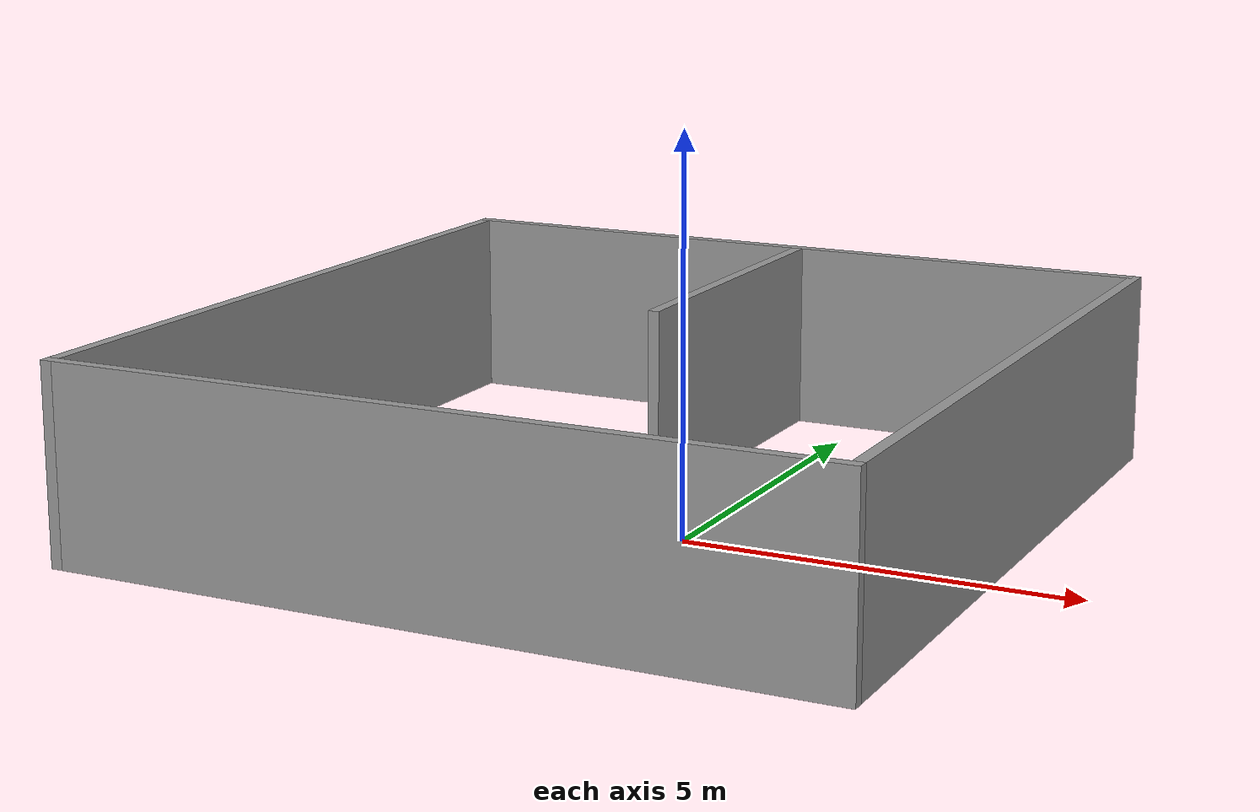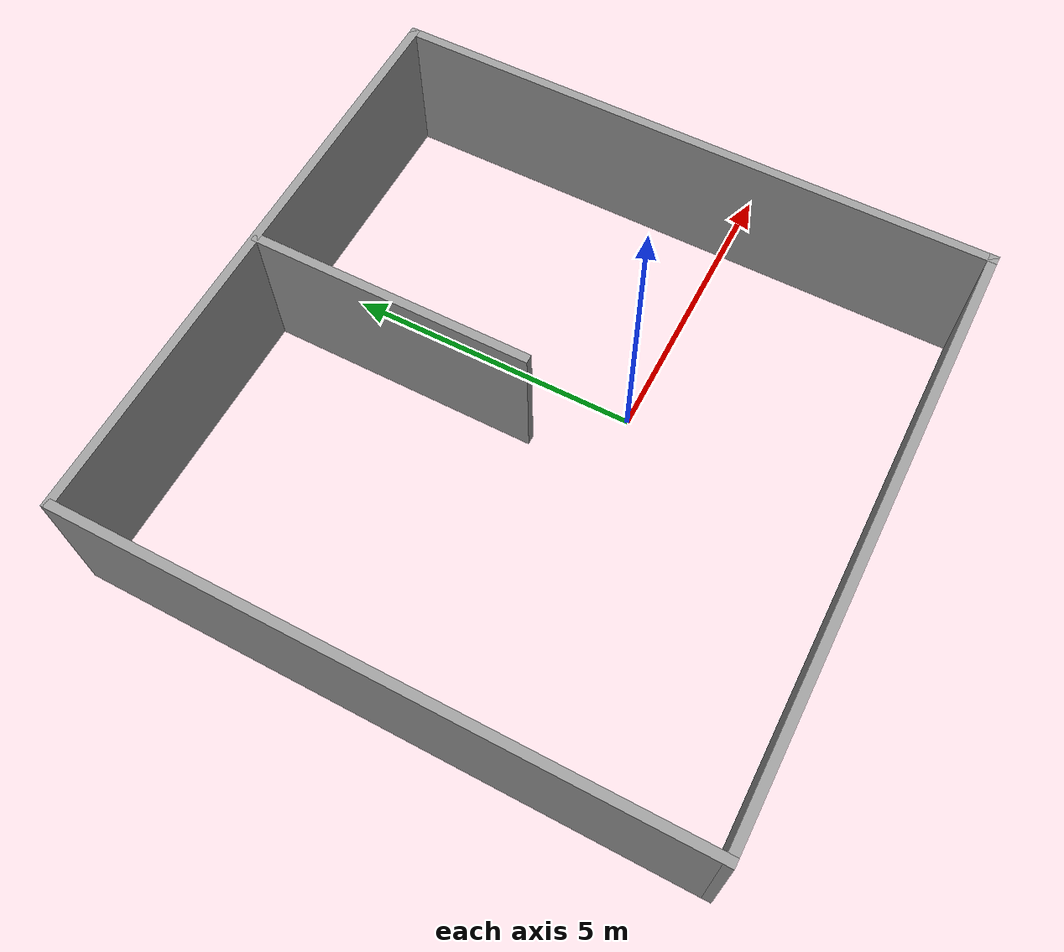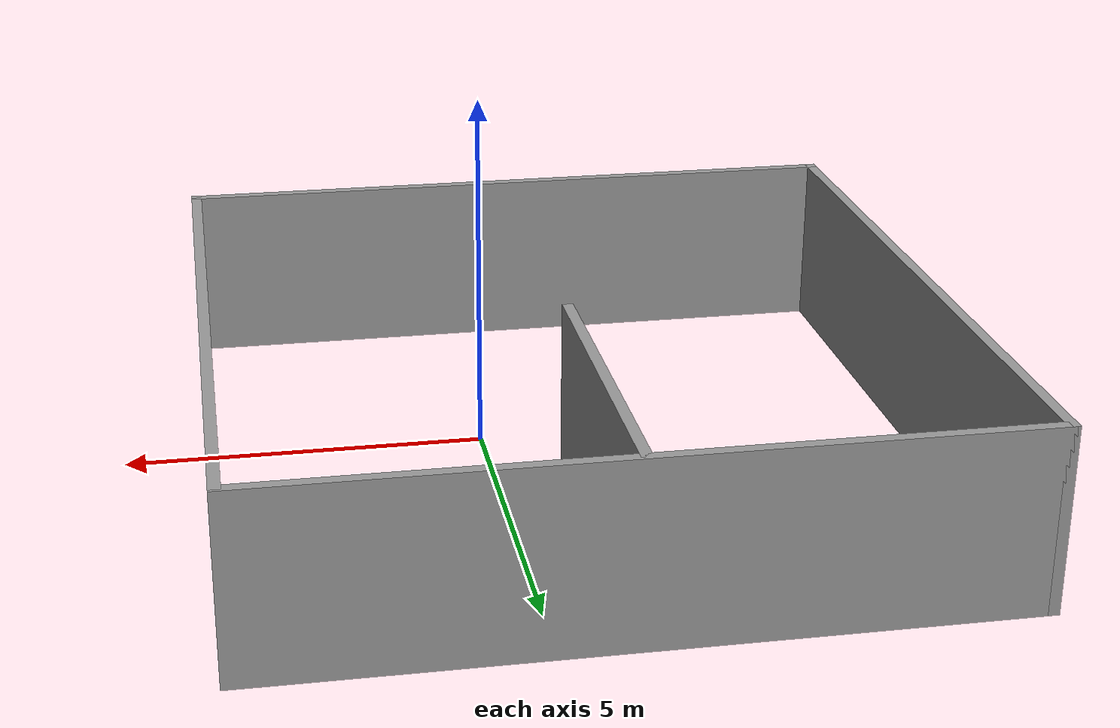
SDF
<?xml version='1.0'?>
<sdf version='1.7'>
  <model name='world3'>
    <pose>-1.12961 0.909542 0 0 -0 0</pose>
    <link name='Wall_19'>
      <collision name='Wall_19_Collision'>
        <geometry>
          <box>
            <size>10 0.15 2.5</size>
          </box>
        </geometry>
        <pose>0 0 1.25 0 -0 0</pose>
      </collision>
      <visual name='Wall_19_Visual'>
        <pose>0 0 1.25 0 -0 0</pose>
        <geometry>
          <box>
            <size>10 0.15 2.5</size>
          </box>
        </geometry>
        <material>
          <script>
            <uri>file://media/materials/scripts/gazebo.material</uri>
            <name>Gazebo/Grey</name>
          </script>
          <ambient>1 1 1 1</ambient>
        </material>
        <meta>
          <layer>0</layer>
        </meta>
      </visual>
      <pose>0 5.05 0 0 -0 0</pose>
    </link>
    <link name='Wall_20'>
      <collision name='Wall_20_Collision'>
        <geometry>
          <box>
            <size>10.25 0.15 2.5</size>
          </box>
        </geometry>
        <pose>0 0 1.25 0 -0 0</pose>
      </collision>
      <visual name='Wall_20_Visual'>
        <pose>0 0 1.25 0 -0 0</pose>
        <geometry>
          <box>
            <size>10.25 0.15 2.5</size>
          </box>
        </geometry>
        <material>
          <script>
            <uri>file://media/materials/scripts/gazebo.material</uri>
            <name>Gazebo/Grey</name>
          </script>
          <ambient>1 1 1 1</ambient>
        </material>
        <meta>
          <layer>0</layer>
        </meta>
      </visual>
      <pose>4.925 0 0 0 -0 -1.5708</pose>
    </link>
    <link name='Wall_21'>
      <collision name='Wall_21_Collision'>
        <geometry>
          <box>
            <size>10 0.15 2.5</size>
          </box>
        </geometry>
        <pose>0 0 1.25 0 -0 0</pose>
      </collision>
      <visual name='Wall_21_Visual'>
        <pose>0 0 1.25 0 -0 0</pose>
        <geometry>
          <box>
            <size>10 0.15 2.5</size>
          </box>
        </geometry>
        <material>
          <script>
            <uri>file://media/materials/scripts/gazebo.material</uri>
            <name>Gazebo/Grey</name>
          </script>
          <ambient>1 1 1 1</ambient>
        </material>
        <meta>
          <layer>0</layer>
        </meta>
      </visual>
      <pose>0 -5.05 0 0 -0 3.14159</pose>
    </link>
    <link name='Wall_22'>
      <collision name='Wall_22_Collision'>
        <geometry>
          <box>
            <size>10.25 0.15 2.5</size>
          </box>
        </geometry>
        <pose>0 0 1.25 0 -0 0</pose>
      </collision>
      <visual name='Wall_22_Visual'>
        <pose>0 0 1.25 0 -0 0</pose>
        <geometry>
          <box>
            <size>10.25 0.15 2.5</size>
          </box>
        </geometry>
        <material>
          <script>
            <uri>file://media/materials/scripts/gazebo.material</uri>
            <name>Gazebo/Grey</name>
          </script>
          <ambient>1 1 1 1</ambient>
        </material>
        <meta>
          <layer>0</layer>
        </meta>
      </visual>
      <pose>-4.925 0 0 0 -0 1.5708</pose>
    </link>
    <link name='Wall_24'>
      <collision name='Wall_24_Collision'>
        <geometry>
          <box>
            <size>4.75 0.15 2.5</size>
          </box>
        </geometry>
        <pose>0 0 1.25 0 -0 0</pose>
      </collision>
      <visual name='Wall_24_Visual'>
        <pose>0 0 1.25 0 -0 0</pose>
        <geometry>
          <box>
            <size>4.75 0.15 2.5</size>
          </box>
        </geometry>
        <material>
          <script>
            <uri>file://media/materials/scripts/gazebo.material</uri>
            <name>Gazebo/Grey</name>
          </script>
          <ambient>1 1 1 1</ambient>
        </material>
        <meta>
          <layer>0</layer>
        </meta>
      </visual>
      <pose>0.12443 2.70557 0 0 -0 1.5708</pose>
    </link>
    <static>1</static>
  </model>
</sdf>
